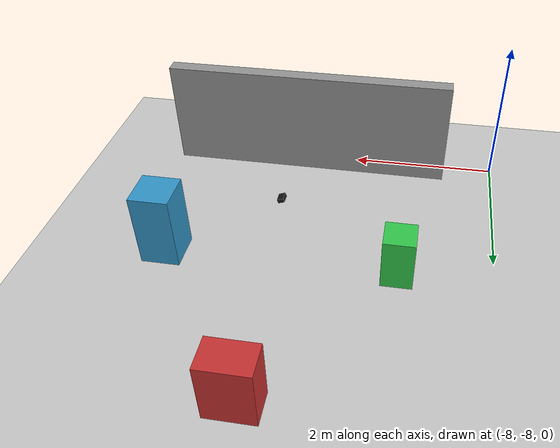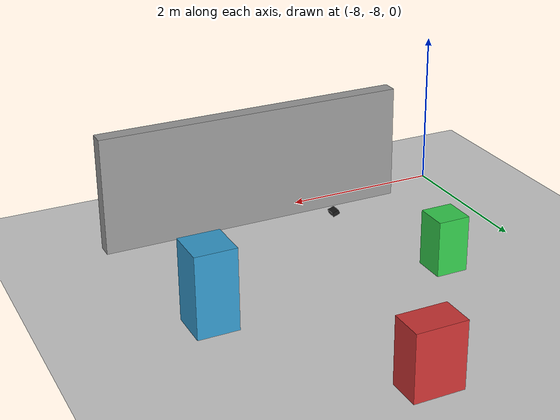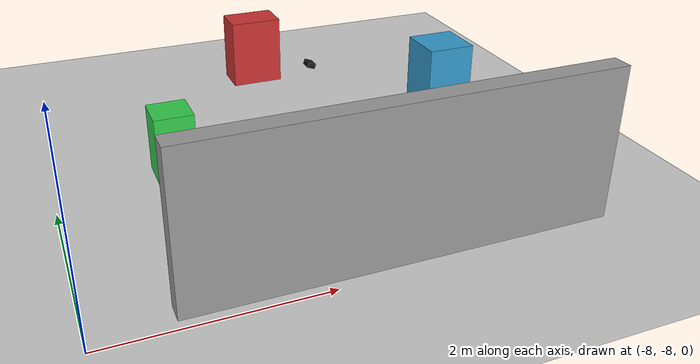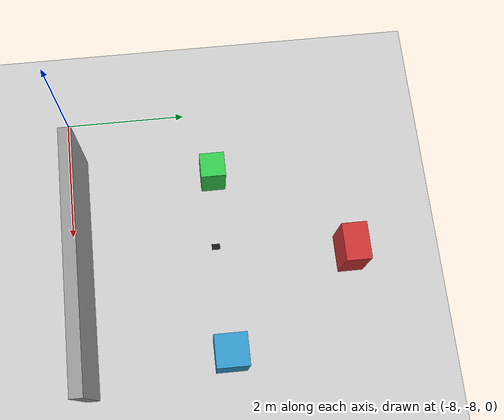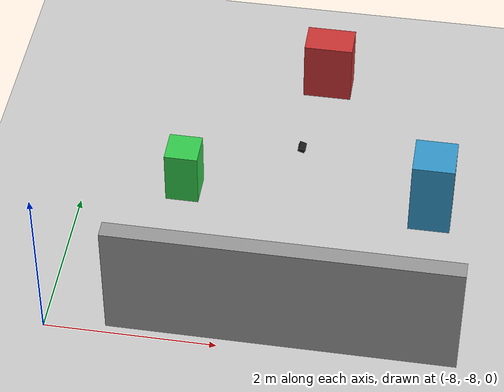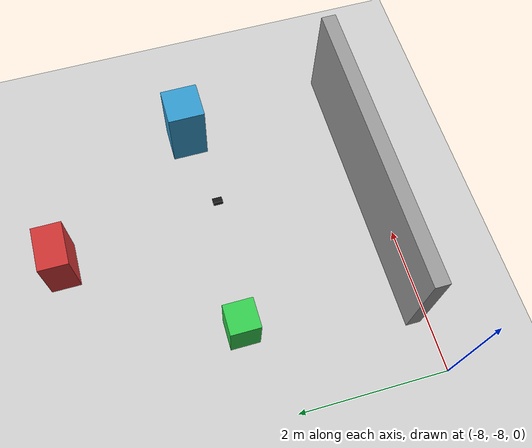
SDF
<?xml version="1.0" ?>
<!-- ADAPTATION TEST: minimal Gazebo Classic world for FKIE NBV.
     Not the official mobile-manipulator stack. Provides depth camera + obstacles. -->
<sdf version="1.6">
  <world name="nbv_minimal">
    <include><uri>model://ground_plane</uri></include>
    <include><uri>model://sun</uri></include>

    <!-- Obstacles near camera for free-space / frontier gain -->
    <model name="box_front">
      <static>true</static>
      <pose>-5.3 -3.5 0.4 0 0 0</pose>
      <link name="link">
        <collision name="c"><geometry><box><size>0.6 0.4 0.8</size></box></geometry></collision>
        <visual name="v"><geometry><box><size>0.6 0.4 0.8</size></box></geometry>
          <material><ambient>0.8 0.2 0.2 1</ambient></material>
        </visual>
      </link>
    </model>
    <model name="box_left">
      <static>true</static>
      <pose>-3.8 -5.6 0.5 0 0 0</pose>
      <link name="link">
        <collision name="c"><geometry><box><size>0.5 0.5 1.0</size></box></geometry></collision>
        <visual name="v"><geometry><box><size>0.5 0.5 1.0</size></box></geometry>
          <material><ambient>0.2 0.6 0.8 1</ambient></material>
        </visual>
      </link>
    </model>
    <model name="box_right">
      <static>true</static>
      <pose>-6.8 -5.6 0.35 0 0 0</pose>
      <link name="link">
        <collision name="c"><geometry><box><size>0.4 0.4 0.7</size></box></geometry></collision>
        <visual name="v"><geometry><box><size>0.4 0.4 0.7</size></box></geometry>
          <material><ambient>0.2 0.8 0.3 1</ambient></material>
        </visual>
      </link>
    </model>
    <model name="wall_back">
      <static>true</static>
      <pose>-5.3 -7.8 0.75 0 0 0</pose>
      <link name="link">
        <collision name="c"><geometry><box><size>4.0 0.2 1.5</size></box></geometry></collision>
        <visual name="v"><geometry><box><size>4.0 0.2 1.5</size></box></geometry>
          <material><ambient>0.6 0.6 0.6 1</ambient></material>
        </visual>
      </link>
    </model>

    <!-- Fixed RGB-D camera (gazebo_ros_openni_kinect) at ROI center.
         Pose inside default planner_boundary of nbv_planner_freespace_fast.yaml -->
    <model name="nbv_depth_cam">
      <static>true</static>
      <pose>-5.36 -5.685 1.0 0 0.35 0</pose>
      <link name="link">
        <inertial><mass>0.1</mass><inertia>
          <ixx>0.001</ixx><iyy>0.001</iyy><izz>0.001</izz>
          <ixy>0</ixy><ixz>0</ixz><iyz>0</iyz>
        </inertia></inertial>
        <visual name="v">
          <geometry><box><size>0.08 0.12 0.05</size></box></geometry>
          <material><ambient>0.1 0.1 0.1 1</ambient></material>
        </visual>
        <sensor name="camera" type="depth">
          <always_on>true</always_on>
          <update_rate>10</update_rate>
          <camera>
            <horizontal_fov>1.3962634</horizontal_fov>
            <image>
              <width>640</width>
              <height>480</height>
              <format>R8G8B8</format>
            </image>
            <clip><near>0.1</near><far>5.0</far></clip>
          </camera>
          <plugin name="cam" filename="libgazebo_ros_openni_kinect.so">
            <alwaysOn>true</alwaysOn>
            <updateRate>10.0</updateRate>
            <cameraName>realsense</cameraName>
            <imageTopicName>color/image_raw</imageTopicName>
            <cameraInfoTopicName>color/camera_info</cameraInfoTopicName>
            <depthImageTopicName>depth/image_raw</depthImageTopicName>
            <depthImageCameraInfoTopicName>depth/camera_info</depthImageCameraInfoTopicName>
            <pointCloudTopicName>depth/points</pointCloudTopicName>
            <frameName>realsense_depth_optical_frame</frameName>
            <pointCloudCutoff>0.15</pointCloudCutoff>
            <pointCloudCutoffMax>4.5</pointCloudCutoffMax>
            <distortionK1>0.0</distortionK1>
            <distortionK2>0.0</distortionK2>
            <distortionK3>0.0</distortionK3>
            <distortionT1>0.0</distortionT1>
            <distortionT2>0.0</distortionT2>
            <CxPrime>0</CxPrime>
            <Cx>0</Cx>
            <Cy>0</Cy>
            <focalLength>0</focalLength>
            <hackBaseline>0</hackBaseline>
          </plugin>
        </sensor>
      </link>
    </model>
  </world>
</sdf>
